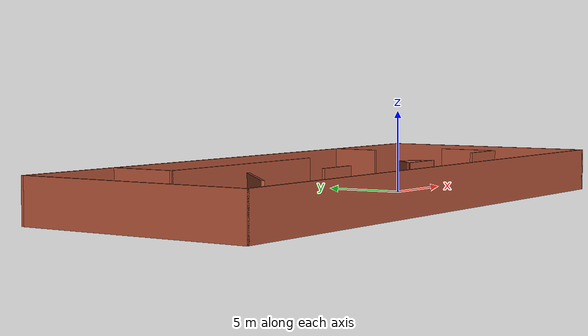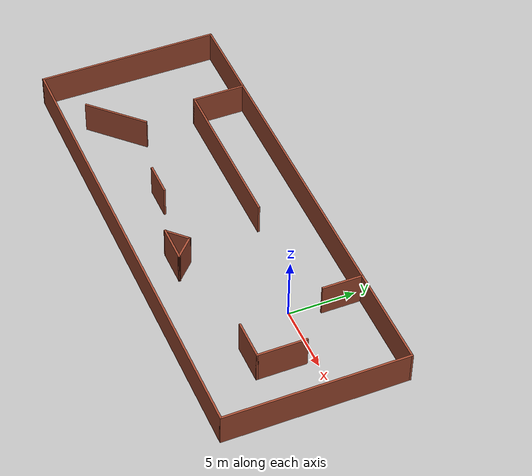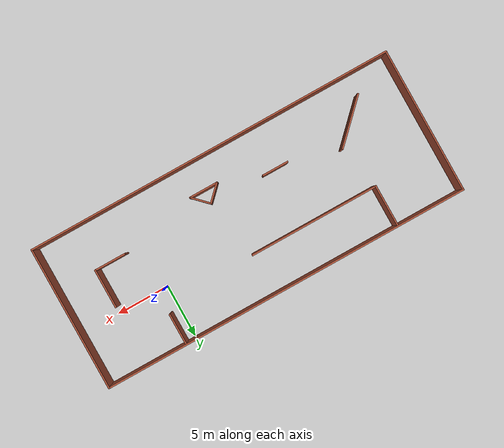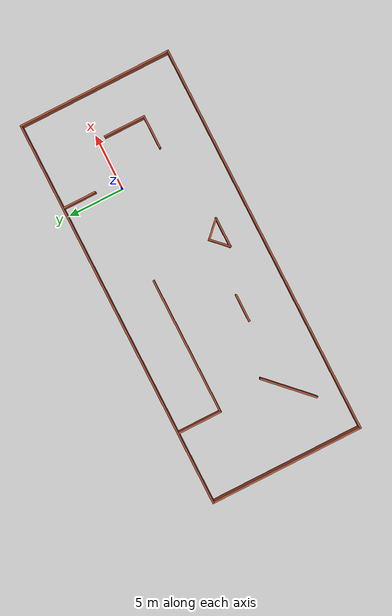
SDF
<?xml version='1.0'?>
<sdf version='1.7'>
  <model name='mapa_03'>
    <pose>-9.0679 -1.69845 0 0 -0 0</pose>
    <link name='Wall_1'>
      <collision name='Wall_1_Collision'>
        <geometry>
          <box>
            <size>35 0.15 2.5</size>
          </box>
        </geometry>
        <pose>0 0 1.25 0 -0 0</pose>
      </collision>
      <visual name='Wall_1_Visual'>
        <pose>0 0 1.25 0 -0 0</pose>
        <geometry>
          <box>
            <size>35 0.15 2.5</size>
          </box>
        </geometry>
        <material>
          <script>
            <uri>file://media/materials/scripts/gazebo.material</uri>
            <name>Gazebo/Bricks</name>
          </script>
          <ambient>1 1 1 1</ambient>
        </material>
        <meta>
          <layer>0</layer>
        </meta>
      </visual>
      <pose>0 -6.8 0 0 -0 0</pose>
    </link>
    <link name='Wall_10'>
      <collision name='Wall_10_Collision'>
        <geometry>
          <box>
            <size>5 0.15 2.5</size>
          </box>
        </geometry>
        <pose>0 0 1.25 0 -0 0</pose>
      </collision>
      <visual name='Wall_10_Visual'>
        <pose>0 0 1.25 0 -0 0</pose>
        <geometry>
          <box>
            <size>5 0.15 2.5</size>
          </box>
        </geometry>
        <material>
          <script>
            <uri>file://media/materials/scripts/gazebo.material</uri>
            <name>Gazebo/Bricks</name>
          </script>
          <ambient>1 1 1 1</ambient>
        </material>
        <meta>
          <layer>0</layer>
        </meta>
      </visual>
      <pose>-11.8385 -3.05397 0 0 -0 0.785398</pose>
    </link>
    <link name='Wall_13'>
      <collision name='Wall_13_Collision'>
        <geometry>
          <box>
            <size>3 0.15 2.5</size>
          </box>
        </geometry>
        <pose>0 0 1.25 0 -0 0</pose>
      </collision>
      <visual name='Wall_13_Visual'>
        <pose>0 0 1.25 0 -0 0</pose>
        <geometry>
          <box>
            <size>3 0.15 2.5</size>
          </box>
        </geometry>
        <material>
          <script>
            <uri>file://media/materials/scripts/gazebo.material</uri>
            <name>Gazebo/Bricks</name>
          </script>
          <ambient>1 1 1 1</ambient>
        </material>
        <meta>
          <layer>0</layer>
        </meta>
      </visual>
      <pose>9.80309 5.29568 0 0 -0 -1.5708</pose>
    </link>
    <link name='Wall_16'>
      <collision name='Wall_16_Collision'>
        <geometry>
          <box>
            <size>2 0.15 2.5</size>
          </box>
        </geometry>
        <pose>0 0 1.25 0 -0 0</pose>
      </collision>
      <visual name='Wall_16_Visual'>
        <pose>0 0 1.25 0 -0 0</pose>
        <geometry>
          <box>
            <size>2 0.15 2.5</size>
          </box>
        </geometry>
        <material>
          <script>
            <uri>file://media/materials/scripts/gazebo.material</uri>
            <name>Gazebo/Bricks</name>
          </script>
          <ambient>1 1 1 1</ambient>
        </material>
        <meta>
          <layer>0</layer>
        </meta>
      </visual>
      <pose>1.39511 -3.4134 0 0 -0 0.785398</pose>
    </link>
    <link name='Wall_17'>
      <collision name='Wall_17_Collision'>
        <geometry>
          <box>
            <size>2 0.15 2.5</size>
          </box>
        </geometry>
        <pose>0 0 1.25 0 -0 0</pose>
      </collision>
      <visual name='Wall_17_Visual'>
        <pose>0 0 1.25 0 -0 0</pose>
        <geometry>
          <box>
            <size>2 0.15 2.5</size>
          </box>
        </geometry>
        <material>
          <script>
            <uri>file://media/materials/scripts/gazebo.material</uri>
            <name>Gazebo/Bricks</name>
          </script>
          <ambient>1 1 1 1</ambient>
        </material>
        <meta>
          <layer>0</layer>
        </meta>
      </visual>
      <pose>2.70326 -3.4134 0 0 -0 -0.785398</pose>
    </link>
    <link name='Wall_18'>
      <collision name='Wall_18_Collision'>
        <geometry>
          <box>
            <size>2.76629 0.15 2.5</size>
          </box>
        </geometry>
        <pose>0 0 1.25 0 -0 0</pose>
      </collision>
      <visual name='Wall_18_Visual'>
        <pose>0 0 1.25 0 -0 0</pose>
        <geometry>
          <box>
            <size>2.76629 0.15 2.5</size>
          </box>
        </geometry>
        <material>
          <script>
            <uri>file://media/materials/scripts/gazebo.material</uri>
            <name>Gazebo/Bricks</name>
          </script>
          <ambient>1 1 1 1</ambient>
        </material>
        <meta>
          <layer>0</layer>
        </meta>
      </visual>
      <pose>2.04919 -4.06747 0 0 -0 3.14159</pose>
    </link>
    <link name='Wall_2'>
      <collision name='Wall_2_Collision'>
        <geometry>
          <box>
            <size>13.75 0.15 2.5</size>
          </box>
        </geometry>
        <pose>0 0 1.25 0 -0 0</pose>
      </collision>
      <visual name='Wall_2_Visual'>
        <pose>0 0 1.25 0 -0 0</pose>
        <geometry>
          <box>
            <size>13.75 0.15 2.5</size>
          </box>
        </geometry>
        <material>
          <script>
            <uri>file://media/materials/scripts/gazebo.material</uri>
            <name>Gazebo/Bricks</name>
          </script>
          <ambient>1 1 1 1</ambient>
        </material>
        <meta>
          <layer>0</layer>
        </meta>
      </visual>
      <pose>17.425 0 0 0 -0 1.5708</pose>
    </link>
    <link name='Wall_21'>
      <collision name='Wall_21_Collision'>
        <geometry>
          <box>
            <size>3.75 0.15 2.5</size>
          </box>
        </geometry>
        <pose>0 0 1.25 0 -0 0</pose>
      </collision>
      <visual name='Wall_21_Visual'>
        <pose>0 0 1.25 0 -0 0</pose>
        <geometry>
          <box>
            <size>3.75 0.15 2.5</size>
          </box>
        </geometry>
        <material>
          <script>
            <uri>file://media/materials/scripts/gazebo.material</uri>
            <name>Gazebo/Bricks</name>
          </script>
          <ambient>1 1 1 1</ambient>
        </material>
        <meta>
          <layer>0</layer>
        </meta>
      </visual>
      <pose>13.525 -0.797043 0 0 -0 -1.5708</pose>
    </link>
    <link name='Wall_22'>
      <collision name='Wall_22_Collision'>
        <geometry>
          <box>
            <size>3 0.15 2.5</size>
          </box>
        </geometry>
        <pose>0 0 1.25 0 -0 0</pose>
      </collision>
      <visual name='Wall_22_Visual'>
        <pose>0 0 1.25 0 -0 0</pose>
        <geometry>
          <box>
            <size>3 0.15 2.5</size>
          </box>
        </geometry>
        <material>
          <script>
            <uri>file://media/materials/scripts/gazebo.material</uri>
            <name>Gazebo/Bricks</name>
          </script>
          <ambient>1 1 1 1</ambient>
        </material>
        <meta>
          <layer>0</layer>
        </meta>
      </visual>
      <pose>12.1 -2.59704 0 0 -0 3.14159</pose>
    </link>
    <link name='Wall_24'>
      <collision name='Wall_24_Collision'>
        <geometry>
          <box>
            <size>2.5 0.15 2.5</size>
          </box>
        </geometry>
        <pose>0 0 1.25 0 -0 0</pose>
      </collision>
      <visual name='Wall_24_Visual'>
        <pose>0 0 1.25 0 -0 0</pose>
        <geometry>
          <box>
            <size>2.5 0.15 2.5</size>
          </box>
        </geometry>
        <material>
          <script>
            <uri>file://media/materials/scripts/gazebo.material</uri>
            <name>Gazebo/Bricks</name>
          </script>
          <ambient>1 1 1 1</ambient>
        </material>
        <meta>
          <layer>0</layer>
        </meta>
      </visual>
      <pose>-4.23321 -2.66501 0 0 -0 0</pose>
    </link>
    <link name='Wall_4'>
      <collision name='Wall_4_Collision'>
        <geometry>
          <box>
            <size>35 0.15 2.5</size>
          </box>
        </geometry>
        <pose>0 0 1.25 0 -0 0</pose>
      </collision>
      <visual name='Wall_4_Visual'>
        <pose>0 0 1.25 0 -0 0</pose>
        <geometry>
          <box>
            <size>35 0.15 2.5</size>
          </box>
        </geometry>
        <material>
          <script>
            <uri>file://media/materials/scripts/gazebo.material</uri>
            <name>Gazebo/Bricks</name>
          </script>
          <ambient>1 1 1 1</ambient>
        </material>
        <meta>
          <layer>0</layer>
        </meta>
      </visual>
      <pose>0 6.8 0 0 -0 3.14159</pose>
    </link>
    <link name='Wall_5'>
      <collision name='Wall_5_Collision'>
        <geometry>
          <box>
            <size>13.75 0.15 2.5</size>
          </box>
        </geometry>
        <pose>0 0 1.25 0 -0 0</pose>
      </collision>
      <visual name='Wall_5_Visual'>
        <pose>0 0 1.25 0 -0 0</pose>
        <geometry>
          <box>
            <size>13.75 0.15 2.5</size>
          </box>
        </geometry>
        <material>
          <script>
            <uri>file://media/materials/scripts/gazebo.material</uri>
            <name>Gazebo/Bricks</name>
          </script>
          <ambient>1 1 1 1</ambient>
        </material>
        <meta>
          <layer>0</layer>
        </meta>
      </visual>
      <pose>-17.425 0 0 0 -0 -1.5708</pose>
    </link>
    <link name='Wall_7'>
      <collision name='Wall_7_Collision'>
        <geometry>
          <box>
            <size>4 0.15 2.5</size>
          </box>
        </geometry>
        <pose>0 0 1.25 0 -0 0</pose>
      </collision>
      <visual name='Wall_7_Visual'>
        <pose>0 0 1.25 0 -0 0</pose>
        <geometry>
          <box>
            <size>4 0.15 2.5</size>
          </box>
        </geometry>
        <material>
          <script>
            <uri>file://media/materials/scripts/gazebo.material</uri>
            <name>Gazebo/Bricks</name>
          </script>
          <ambient>1 1 1 1</ambient>
        </material>
        <meta>
          <layer>0</layer>
        </meta>
      </visual>
      <pose>-11.018 4.79568 0 0 -0 -1.5708</pose>
    </link>
    <link name='Wall_8'>
      <collision name='Wall_8_Collision'>
        <geometry>
          <box>
            <size>12.25 0.15 2.5</size>
          </box>
        </geometry>
        <pose>0 0 1.25 0 -0 0</pose>
      </collision>
      <visual name='Wall_8_Visual'>
        <pose>0 0 1.25 0 -0 0</pose>
        <geometry>
          <box>
            <size>12.25 0.15 2.5</size>
          </box>
        </geometry>
        <material>
          <script>
            <uri>file://media/materials/scripts/gazebo.material</uri>
            <name>Gazebo/Bricks</name>
          </script>
          <ambient>1 1 1 1</ambient>
        </material>
        <meta>
          <layer>0</layer>
        </meta>
      </visual>
      <pose>-4.96805 2.87068 0 0 -0 0</pose>
    </link>
    <static>1</static>
  </model>
</sdf>
